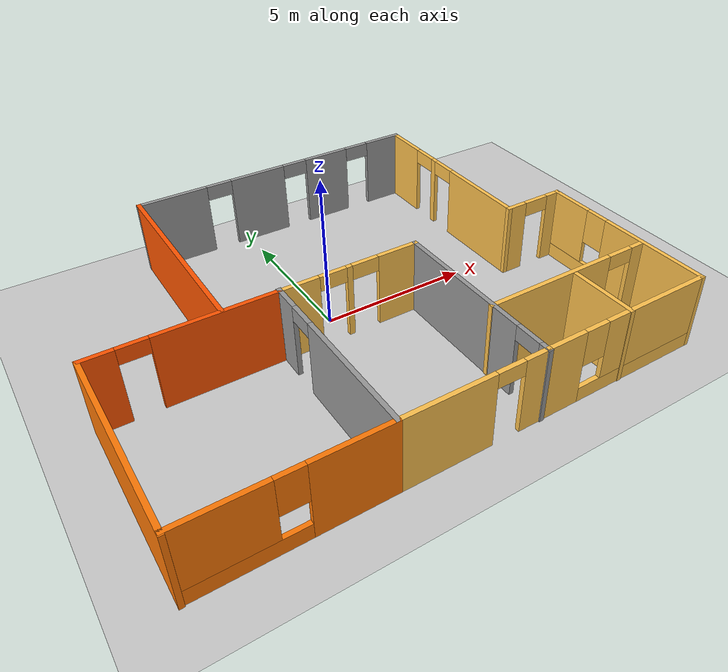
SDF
<sdf version="1.6">
 <world name="default">
  <light name="sun" type="directional">
   <pose>0 0 10 0 -0 0</pose>
   <diffuse>0.8 0.8 0.8 1</diffuse>
   <specular>0.2 0.2 0.2 1</specular>
   <attenuation>
    <range>1000</range>
    <constant>0.9</constant>
    <linear>0.01</linear>
    <quadratic>0.001</quadratic>
   </attenuation>
   <direction>-0.5 0.1 -0.9</direction>
  </light>
  <gravity>0 0 -9.8</gravity>
  <magnetic_field>6e-06 2.3e-05 -4.2e-05</magnetic_field>
  <atmosphere type="adiabatic"/>
  <physics name="default_physics" default="0" type="ode">
   <max_step_size>0.001</max_step_size>
   <real_time_factor>1</real_time_factor>
   <real_time_update_rate>1000</real_time_update_rate>
  </physics>
  <scene><ambient>0.4 0.4 0.4 1</ambient><background>0.7 0.7 0.7 1</background><shadows>1</shadows></scene>
  <spherical_coordinates>
   <surface_model>EARTH_WGS84</surface_model>
   <latitude_deg>0</latitude_deg>
   <longitude_deg>0</longitude_deg>
   <elevation>0</elevation>
   <heading_deg>0</heading_deg>
  </spherical_coordinates>
  <include><uri>model://home</uri><pose>0.490005 -0.469645 0 0 -0 0</pose></include>
  <include><uri>model://ground_plane</uri></include>
  <include><uri>model://my_ball</uri><name>my_ball</name><pose>11.051 -2.13249 0.1 0 -0 0</pose></include>
 </world>
</sdf>

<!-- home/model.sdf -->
<sdf version='1.6'>
  <model name='home'>
    <pose frame=''>-4.67293 -1.11377 0 0 -0 0</pose>
    <link name='Wall_29'>
      <collision name='Wall_29_Collision'>
        <geometry>
          <box>
            <size>6.25 0.15 2.5</size>
          </box>
        </geometry>
        <pose frame=''>0 0 1.25 0 -0 0</pose>
      </collision>
      <visual name='Wall_29_Visual'>
        <pose frame=''>0 0 1.25 0 -0 0</pose>
        <geometry>
          <box>
            <size>6.25 0.15 2.5</size>
          </box>
        </geometry>
        <material>
          <script>
            <uri>file://media/materials/scripts/gazebo.material</uri>
            <name>Gazebo/Grey</name>
          </script>
          <ambient>0.996078 0.47451 0.0196078 1</ambient>
        </material>
        <meta>
          <layer>0</layer>
        </meta>
      </visual>
      <pose frame=''>-8.03132 -3.44452 0 0 -0 1.5708</pose>
    </link>
    <link name='Wall_30'>
      <pose frame=''>-5.23132 -0.394516 0 0 -0 0</pose>
      <visual name='Wall_30_Visual_0'>
        <pose frame=''>-2.36576 0 1.25 0 -0 0</pose>
        <geometry>
          <box>
            <size>1.01847 0.15 2.5</size>
          </box>
        </geometry>
        <material>
          <script>
            <uri>file://media/materials/scripts/gazebo.material</uri>
            <name>Gazebo/Grey</name>
          </script>
          <ambient>1 0.333333 0 1</ambient>
        </material>
        <meta>
          <layer>0</layer>
        </meta>
      </visual>
      <collision name='Wall_30_Collision_0'>
        <geometry>
          <box>
            <size>1.01847 0.15 2.5</size>
          </box>
        </geometry>
        <pose frame=''>-2.36576 0 1.25 0 -0 0</pose>
      </collision>
      <visual name='Wall_30_Visual_1'>
        <pose frame=''>0.959236 0 1.25 0 -0 0</pose>
        <geometry>
          <box>
            <size>3.83153 0.15 2.5</size>
          </box>
        </geometry>
        <material>
          <script>
            <uri>file://media/materials/scripts/gazebo.material</uri>
            <name>Gazebo/Grey</name>
          </script>
          <ambient>1 0.333333 0 1</ambient>
        </material>
        <meta>
          <layer>0</layer>
        </meta>
      </visual>
      <collision name='Wall_30_Collision_1'>
        <geometry>
          <box>
            <size>3.83153 0.15 2.5</size>
          </box>
        </geometry>
        <pose frame=''>0.959236 0 1.25 0 -0 0</pose>
      </collision>
      <visual name='Wall_30_Visual_2'>
        <pose frame=''>-1.40653 0 2.25 0 -0 0</pose>
        <geometry>
          <box>
            <size>0.9 0.15 0.5</size>
          </box>
        </geometry>
        <material>
          <script>
            <uri>file://media/materials/scripts/gazebo.material</uri>
            <name>Gazebo/Grey</name>
          </script>
          <ambient>1 0.333333 0 1</ambient>
        </material>
        <meta>
          <layer>0</layer>
        </meta>
      </visual>
      <collision name='Wall_30_Collision_2'>
        <geometry>
          <box>
            <size>0.9 0.15 0.5</size>
          </box>
        </geometry>
        <pose frame=''>-1.40653 0 2.25 0 -0 0</pose>
      </collision>
    </link>
    <link name='Wall_33'>
      <pose frame=''>-2.41868 -3.40548 0 0 0 -1.5708</pose>
      <visual name='Wall_33_Visual_0'>
        <pose frame=''>-2.63049 0 1.25 0 -0 0</pose>
        <geometry>
          <box>
            <size>0.989023 0.15 2.5</size>
          </box>
        </geometry>
        <material>
          <script>
            <uri>file://media/materials/scripts/gazebo.material</uri>
            <name>Gazebo/Grey</name>
          </script>
          <ambient>1 1 1 1</ambient>
        </material>
        <meta>
          <layer>0</layer>
        </meta>
      </visual>
      <collision name='Wall_33_Collision_0'>
        <geometry>
          <box>
            <size>0.989023 0.15 2.5</size>
          </box>
        </geometry>
        <pose frame=''>-2.63049 0 1.25 0 -0 0</pose>
      </collision>
      <visual name='Wall_33_Visual_1'>
        <pose frame=''>0.944511 0 1.25 0 -0 0</pose>
        <geometry>
          <box>
            <size>4.36098 0.15 2.5</size>
          </box>
        </geometry>
        <material>
          <script>
            <uri>file://media/materials/scripts/gazebo.material</uri>
            <name>Gazebo/Grey</name>
          </script>
          <ambient>1 1 1 1</ambient>
        </material>
        <meta>
          <layer>0</layer>
        </meta>
      </visual>
      <collision name='Wall_33_Collision_1'>
        <geometry>
          <box>
            <size>4.36098 0.15 2.5</size>
          </box>
        </geometry>
        <pose frame=''>0.944511 0 1.25 0 -0 0</pose>
      </collision>
      <visual name='Wall_33_Visual_2'>
        <pose frame=''>-1.68598 0 2.25 0 -0 0</pose>
        <geometry>
          <box>
            <size>0.9 0.15 0.5</size>
          </box>
        </geometry>
        <material>
          <script>
            <uri>file://media/materials/scripts/gazebo.material</uri>
            <name>Gazebo/Grey</name>
          </script>
          <ambient>1 1 1 1</ambient>
        </material>
        <meta>
          <layer>0</layer>
        </meta>
      </visual>
      <collision name='Wall_33_Collision_2'>
        <geometry>
          <box>
            <size>0.9 0.15 0.5</size>
          </box>
        </geometry>
        <pose frame=''>-1.68598 0 2.25 0 -0 0</pose>
      </collision>
    </link>
    <link name='Wall_34'>
      <pose frame=''>-5.21868 -6.45548 0 0 -0 3.14159</pose>
      <visual name='Wall_34_Visual_0'>
        <pose frame=''>-1.65698 0 1.25 0 -0 0</pose>
        <geometry>
          <box>
            <size>2.43604 0.15 2.5</size>
          </box>
        </geometry>
        <material>
          <script>
            <uri>file://media/materials/scripts/gazebo.material</uri>
            <name>Gazebo/Grey</name>
          </script>
          <ambient>0.996078 0.47451 0.0196078 1</ambient>
        </material>
        <meta>
          <layer>0</layer>
        </meta>
      </visual>
      <collision name='Wall_34_Collision_0'>
        <geometry>
          <box>
            <size>2.43604 0.15 2.5</size>
          </box>
        </geometry>
        <pose frame=''>-1.65698 0 1.25 0 -0 0</pose>
      </collision>
      <visual name='Wall_34_Visual_1'>
        <pose frame=''>1.21802 0 0.25 0 -0 0</pose>
        <geometry>
          <box>
            <size>3.31396 0.15 0.5</size>
          </box>
        </geometry>
        <material>
          <script>
            <uri>file://media/materials/scripts/gazebo.material</uri>
            <name>Gazebo/Grey</name>
          </script>
          <ambient>0.996078 0.47451 0.0196078 1</ambient>
        </material>
        <meta>
          <layer>0</layer>
        </meta>
      </visual>
      <collision name='Wall_34_Collision_1'>
        <geometry>
          <box>
            <size>3.31396 0.15 0.5</size>
          </box>
        </geometry>
        <pose frame=''>1.21802 0 0.25 0 -0 0</pose>
      </collision>
      <visual name='Wall_34_Visual_2'>
        <pose frame=''>1.61802 0 1.5 0 -0 0</pose>
        <geometry>
          <box>
            <size>2.51396 0.15 2</size>
          </box>
        </geometry>
        <material>
          <script>
            <uri>file://media/materials/scripts/gazebo.material</uri>
            <name>Gazebo/Grey</name>
          </script>
          <ambient>0.996078 0.47451 0.0196078 1</ambient>
        </material>
        <meta>
          <layer>0</layer>
        </meta>
      </visual>
      <collision name='Wall_34_Collision_2'>
        <geometry>
          <box>
            <size>2.51396 0.15 2</size>
          </box>
        </geometry>
        <pose frame=''>1.61802 0 1.5 0 -0 0</pose>
      </collision>
      <visual name='Wall_34_Visual_3'>
        <pose frame=''>-0.038964 0 1.9 0 -0 0</pose>
        <geometry>
          <box>
            <size>0.8 0.15 1.2</size>
          </box>
        </geometry>
        <material>
          <script>
            <uri>file://media/materials/scripts/gazebo.material</uri>
            <name>Gazebo/Grey</name>
          </script>
          <ambient>0.996078 0.47451 0.0196078 1</ambient>
        </material>
        <meta>
          <layer>0</layer>
        </meta>
      </visual>
      <collision name='Wall_34_Collision_3'>
        <geometry>
          <box>
            <size>0.8 0.15 1.2</size>
          </box>
        </geometry>
        <pose frame=''>-0.038964 0 1.9 0 -0 0</pose>
      </collision>
    </link>
    <link name='Wall_38'>
      <pose frame=''>-0.118679 -6.45548 0 0 -0 0</pose>
      <visual name='Wall_38_Visual_0'>
        <pose frame=''>-0.881556 0 1.25 0 -0 0</pose>
        <geometry>
          <box>
            <size>2.98689 0.15 2.5</size>
          </box>
        </geometry>
        <material>
          <script>
            <uri>file://media/materials/scripts/gazebo.material</uri>
            <name>Gazebo/Grey</name>
          </script>
          <ambient>1 0.764706 0.305882 1</ambient>
        </material>
        <meta>
          <layer>0</layer>
        </meta>
      </visual>
      <collision name='Wall_38_Collision_0'>
        <geometry>
          <box>
            <size>2.98689 0.15 2.5</size>
          </box>
        </geometry>
        <pose frame=''>-0.881556 0 1.25 0 -0 0</pose>
      </collision>
      <visual name='Wall_38_Visual_1'>
        <pose frame=''>1.94344 0 1.25 0 -0 0</pose>
        <geometry>
          <box>
            <size>0.863112 0.15 2.5</size>
          </box>
        </geometry>
        <material>
          <script>
            <uri>file://media/materials/scripts/gazebo.material</uri>
            <name>Gazebo/Grey</name>
          </script>
          <ambient>1 0.764706 0.305882 1</ambient>
        </material>
        <meta>
          <layer>0</layer>
        </meta>
      </visual>
      <collision name='Wall_38_Collision_1'>
        <geometry>
          <box>
            <size>0.863112 0.15 2.5</size>
          </box>
        </geometry>
        <pose frame=''>1.94344 0 1.25 0 -0 0</pose>
      </collision>
      <visual name='Wall_38_Visual_2'>
        <pose frame=''>1.06189 0 2.25 0 -0 0</pose>
        <geometry>
          <box>
            <size>0.9 0.15 0.5</size>
          </box>
        </geometry>
        <material>
          <script>
            <uri>file://media/materials/scripts/gazebo.material</uri>
            <name>Gazebo/Grey</name>
          </script>
          <ambient>1 0.764706 0.305882 1</ambient>
        </material>
        <meta>
          <layer>0</layer>
        </meta>
      </visual>
      <collision name='Wall_38_Collision_2'>
        <geometry>
          <box>
            <size>0.9 0.15 0.5</size>
          </box>
        </geometry>
        <pose frame=''>1.06189 0 2.25 0 -0 0</pose>
      </collision>
    </link>
    <link name='Wall_39'>
      <pose frame=''>5.10632 -6.45548 0 0 -0 0</pose>
      <visual name='Wall_39_Visual_0'>
        <pose frame=''>-2.31199 0 1.25 0 -0 0</pose>
        <geometry>
          <box>
            <size>1.37601 0.15 2.5</size>
          </box>
        </geometry>
        <material>
          <script>
            <uri>file://media/materials/scripts/gazebo.material</uri>
            <name>Gazebo/Grey</name>
          </script>
          <ambient>1 0.764706 0.305882 1</ambient>
        </material>
        <meta>
          <layer>0</layer>
        </meta>
      </visual>
      <collision name='Wall_39_Collision_0'>
        <geometry>
          <box>
            <size>1.37601 0.15 2.5</size>
          </box>
        </geometry>
        <pose frame=''>-2.31199 0 1.25 0 -0 0</pose>
      </collision>
      <visual name='Wall_39_Visual_1'>
        <pose frame=''>0.688007 0 0.25 0 -0 0</pose>
        <geometry>
          <box>
            <size>4.62399 0.15 0.5</size>
          </box>
        </geometry>
        <material>
          <script>
            <uri>file://media/materials/scripts/gazebo.material</uri>
            <name>Gazebo/Grey</name>
          </script>
          <ambient>1 0.764706 0.305882 1</ambient>
        </material>
        <meta>
          <layer>0</layer>
        </meta>
      </visual>
      <collision name='Wall_39_Collision_1'>
        <geometry>
          <box>
            <size>4.62399 0.15 0.5</size>
          </box>
        </geometry>
        <pose frame=''>0.688007 0 0.25 0 -0 0</pose>
      </collision>
      <visual name='Wall_39_Visual_2'>
        <pose frame=''>1.08801 0 1.5 0 -0 0</pose>
        <geometry>
          <box>
            <size>3.82399 0.15 2</size>
          </box>
        </geometry>
        <material>
          <script>
            <uri>file://media/materials/scripts/gazebo.material</uri>
            <name>Gazebo/Grey</name>
          </script>
          <ambient>1 0.764706 0.305882 1</ambient>
        </material>
        <meta>
          <layer>0</layer>
        </meta>
      </visual>
      <collision name='Wall_39_Collision_2'>
        <geometry>
          <box>
            <size>3.82399 0.15 2</size>
          </box>
        </geometry>
        <pose frame=''>1.08801 0 1.5 0 -0 0</pose>
      </collision>
      <visual name='Wall_39_Visual_3'>
        <pose frame=''>-1.22399 0 1.9 0 -0 0</pose>
        <geometry>
          <box>
            <size>0.8 0.15 1.2</size>
          </box>
        </geometry>
        <material>
          <script>
            <uri>file://media/materials/scripts/gazebo.material</uri>
            <name>Gazebo/Grey</name>
          </script>
          <ambient>1 0.764706 0.305882 1</ambient>
        </material>
        <meta>
          <layer>0</layer>
        </meta>
      </visual>
      <collision name='Wall_39_Collision_3'>
        <geometry>
          <box>
            <size>0.8 0.15 1.2</size>
          </box>
        </geometry>
        <pose frame=''>-1.22399 0 1.9 0 -0 0</pose>
      </collision>
    </link>
    <link name='Wall_40'>
      <pose frame=''>8.03132 -3.40548 0 0 -0 1.5708</pose>
      <visual name='Wall_40_Visual_0'>
        <pose frame=''>-1.2027 0 1.25 0 -0 0</pose>
        <geometry>
          <box>
            <size>3.8446 0.15 2.5</size>
          </box>
        </geometry>
        <material>
          <script>
            <uri>file://media/materials/scripts/gazebo.material</uri>
            <name>Gazebo/Grey</name>
          </script>
          <ambient>1 0.764706 0.305882 1</ambient>
        </material>
        <meta>
          <layer>0</layer>
        </meta>
      </visual>
      <collision name='Wall_40_Collision_0'>
        <geometry>
          <box>
            <size>3.8446 0.15 2.5</size>
          </box>
        </geometry>
        <pose frame=''>-1.2027 0 1.25 0 -0 0</pose>
      </collision>
      <visual name='Wall_40_Visual_1'>
        <pose frame=''>1.9223 0 0.25 0 -0 0</pose>
        <geometry>
          <box>
            <size>2.4054 0.15 0.5</size>
          </box>
        </geometry>
        <material>
          <script>
            <uri>file://media/materials/scripts/gazebo.material</uri>
            <name>Gazebo/Grey</name>
          </script>
          <ambient>1 0.764706 0.305882 1</ambient>
        </material>
        <meta>
          <layer>0</layer>
        </meta>
      </visual>
      <collision name='Wall_40_Collision_1'>
        <geometry>
          <box>
            <size>2.4054 0.15 0.5</size>
          </box>
        </geometry>
        <pose frame=''>1.9223 0 0.25 0 -0 0</pose>
      </collision>
      <visual name='Wall_40_Visual_2'>
        <pose frame=''>2.3223 0 1.5 0 -0 0</pose>
        <geometry>
          <box>
            <size>1.6054 0.15 2</size>
          </box>
        </geometry>
        <material>
          <script>
            <uri>file://media/materials/scripts/gazebo.material</uri>
            <name>Gazebo/Grey</name>
          </script>
          <ambient>1 0.764706 0.305882 1</ambient>
        </material>
        <meta>
          <layer>0</layer>
        </meta>
      </visual>
      <collision name='Wall_40_Collision_2'>
        <geometry>
          <box>
            <size>1.6054 0.15 2</size>
          </box>
        </geometry>
        <pose frame=''>2.3223 0 1.5 0 -0 0</pose>
      </collision>
      <visual name='Wall_40_Visual_3'>
        <pose frame=''>1.1196 0 1.9 0 -0 0</pose>
        <geometry>
          <box>
            <size>0.8 0.15 1.2</size>
          </box>
        </geometry>
        <material>
          <script>
            <uri>file://media/materials/scripts/gazebo.material</uri>
            <name>Gazebo/Grey</name>
          </script>
          <ambient>1 0.764706 0.305882 1</ambient>
        </material>
        <meta>
          <layer>0</layer>
        </meta>
      </visual>
      <collision name='Wall_40_Collision_3'>
        <geometry>
          <box>
            <size>0.8 0.15 1.2</size>
          </box>
        </geometry>
        <pose frame=''>1.1196 0 1.9 0 -0 0</pose>
      </collision>
    </link>
    <link name='Wall_41'>
      <pose frame=''>6.98132 -0.355484 0 0 -0 3.14159</pose>
      <visual name='Wall_41_Visual_0'>
        <pose frame=''>-0.827467 0 1.25 0 -0 0</pose>
        <geometry>
          <box>
            <size>0.595067 0.15 2.5</size>
          </box>
        </geometry>
        <material>
          <script>
            <uri>file://media/materials/scripts/gazebo.material</uri>
            <name>Gazebo/Grey</name>
          </script>
          <ambient>1 0.764706 0.305882 1</ambient>
        </material>
        <meta>
          <layer>0</layer>
        </meta>
      </visual>
      <collision name='Wall_41_Collision_0'>
        <geometry>
          <box>
            <size>0.595067 0.15 2.5</size>
          </box>
        </geometry>
        <pose frame=''>-0.827467 0 1.25 0 -0 0</pose>
      </collision>
      <visual name='Wall_41_Visual_1'>
        <pose frame=''>0.747533 0 1.25 0 -0 0</pose>
        <geometry>
          <box>
            <size>0.754933 0.15 2.5</size>
          </box>
        </geometry>
        <material>
          <script>
            <uri>file://media/materials/scripts/gazebo.material</uri>
            <name>Gazebo/Grey</name>
          </script>
          <ambient>1 0.764706 0.305882 1</ambient>
        </material>
        <meta>
          <layer>0</layer>
        </meta>
      </visual>
      <collision name='Wall_41_Collision_1'>
        <geometry>
          <box>
            <size>0.754933 0.15 2.5</size>
          </box>
        </geometry>
        <pose frame=''>0.747533 0 1.25 0 -0 0</pose>
      </collision>
      <visual name='Wall_41_Visual_2'>
        <pose frame=''>-0.079933 0 2.25 0 -0 0</pose>
        <geometry>
          <box>
            <size>0.9 0.15 0.5</size>
          </box>
        </geometry>
        <material>
          <script>
            <uri>file://media/materials/scripts/gazebo.material</uri>
            <name>Gazebo/Grey</name>
          </script>
          <ambient>1 0.764706 0.305882 1</ambient>
        </material>
        <meta>
          <layer>0</layer>
        </meta>
      </visual>
      <collision name='Wall_41_Collision_2'>
        <geometry>
          <box>
            <size>0.9 0.15 0.5</size>
          </box>
        </geometry>
        <pose frame=''>-0.079933 0 2.25 0 -0 0</pose>
      </collision>
    </link>
    <link name='Wall_42'>
      <pose frame=''>5.93132 3.06952 0 0 -0 1.5708</pose>
      <visual name='Wall_42_Visual_0'>
        <pose frame=''>-1.86127 0 1.25 0 -0 0</pose>
        <geometry>
          <box>
            <size>3.27747 0.15 2.5</size>
          </box>
        </geometry>
        <material>
          <script>
            <uri>file://media/materials/scripts/gazebo.material</uri>
            <name>Gazebo/Grey</name>
          </script>
          <ambient>1 0.764706 0.305882 1</ambient>
        </material>
        <meta>
          <layer>0</layer>
        </meta>
      </visual>
      <collision name='Wall_42_Collision_0'>
        <geometry>
          <box>
            <size>3.27747 0.15 2.5</size>
          </box>
        </geometry>
        <pose frame=''>-1.86127 0 1.25 0 -0 0</pose>
      </collision>
      <visual name='Wall_42_Visual_1'>
        <pose frame=''>0.793847 0 1.25 0 -0 0</pose>
        <geometry>
          <box>
            <size>0.232756 0.15 2.5</size>
          </box>
        </geometry>
        <material>
          <script>
            <uri>file://media/materials/scripts/gazebo.material</uri>
            <name>Gazebo/Grey</name>
          </script>
          <ambient>1 0.764706 0.305882 1</ambient>
        </material>
        <meta>
          <layer>0</layer>
        </meta>
      </visual>
      <collision name='Wall_42_Collision_1'>
        <geometry>
          <box>
            <size>0.232756 0.15 2.5</size>
          </box>
        </geometry>
        <pose frame=''>0.793847 0 1.25 0 -0 0</pose>
      </collision>
      <visual name='Wall_42_Visual_2'>
        <pose frame=''>2.65511 0 1.25 0 -0 0</pose>
        <geometry>
          <box>
            <size>1.68978 0.15 2.5</size>
          </box>
        </geometry>
        <material>
          <script>
            <uri>file://media/materials/scripts/gazebo.material</uri>
            <name>Gazebo/Grey</name>
          </script>
          <ambient>1 0.764706 0.305882 1</ambient>
        </material>
        <meta>
          <layer>0</layer>
        </meta>
      </visual>
      <collision name='Wall_42_Collision_2'>
        <geometry>
          <box>
            <size>1.68978 0.15 2.5</size>
          </box>
        </geometry>
        <pose frame=''>2.65511 0 1.25 0 -0 0</pose>
      </collision>
      <visual name='Wall_42_Visual_3'>
        <pose frame=''>0.227469 0 2.25 0 -0 0</pose>
        <geometry>
          <box>
            <size>0.9 0.15 0.5</size>
          </box>
        </geometry>
        <material>
          <script>
            <uri>file://media/materials/scripts/gazebo.material</uri>
            <name>Gazebo/Grey</name>
          </script>
          <ambient>1 0.764706 0.305882 1</ambient>
        </material>
        <meta>
          <layer>0</layer>
        </meta>
      </visual>
      <collision name='Wall_42_Collision_3'>
        <geometry>
          <box>
            <size>0.9 0.15 0.5</size>
          </box>
        </geometry>
        <pose frame=''>0.227469 0 2.25 0 -0 0</pose>
      </collision>
      <visual name='Wall_42_Visual_4'>
        <pose frame=''>1.36023 0 2.25 0 -0 0</pose>
        <geometry>
          <box>
            <size>0.9 0.15 0.5</size>
          </box>
        </geometry>
        <material>
          <script>
            <uri>file://media/materials/scripts/gazebo.material</uri>
            <name>Gazebo/Grey</name>
          </script>
          <ambient>1 0.764706 0.305882 1</ambient>
        </material>
        <meta>
          <layer>0</layer>
        </meta>
      </visual>
      <collision name='Wall_42_Collision_4'>
        <geometry>
          <box>
            <size>0.9 0.15 0.5</size>
          </box>
        </geometry>
        <pose frame=''>1.36023 0 2.25 0 -0 0</pose>
      </collision>
    </link>
    <link name='Wall_43'>
      <pose frame=''>0.881321 6.49452 0 0 -0 3.14159</pose>
      <visual name='Wall_43_Visual_0'>
        <pose frame=''>-4.40937 0 1.25 0 -0 0</pose>
        <geometry>
          <box>
            <size>1.43125 0.15 2.5</size>
          </box>
        </geometry>
        <material>
          <script>
            <uri>file://media/materials/scripts/gazebo.material</uri>
            <name>Gazebo/Grey</name>
          </script>
          <ambient>1 1 1 1</ambient>
        </material>
        <meta>
          <layer>0</layer>
        </meta>
      </visual>
      <collision name='Wall_43_Collision_0'>
        <geometry>
          <box>
            <size>1.43125 0.15 2.5</size>
          </box>
        </geometry>
        <pose frame=''>-4.40937 0 1.25 0 -0 0</pose>
      </collision>
      <visual name='Wall_43_Visual_1'>
        <pose frame=''>-1.94917 0 1.25 0 -0 0</pose>
        <geometry>
          <box>
            <size>1.68916 0.15 2.5</size>
          </box>
        </geometry>
        <material>
          <script>
            <uri>file://media/materials/scripts/gazebo.material</uri>
            <name>Gazebo/Grey</name>
          </script>
          <ambient>1 1 1 1</ambient>
        </material>
        <meta>
          <layer>0</layer>
        </meta>
      </visual>
      <collision name='Wall_43_Collision_1'>
        <geometry>
          <box>
            <size>1.68916 0.15 2.5</size>
          </box>
        </geometry>
        <pose frame=''>-1.94917 0 1.25 0 -0 0</pose>
      </collision>
      <visual name='Wall_43_Visual_2'>
        <pose frame=''>0.801811 0 1.25 0 -0 0</pose>
        <geometry>
          <box>
            <size>2.0128 0.15 2.5</size>
          </box>
        </geometry>
        <material>
          <script>
            <uri>file://media/materials/scripts/gazebo.material</uri>
            <name>Gazebo/Grey</name>
          </script>
          <ambient>1 1 1 1</ambient>
        </material>
        <meta>
          <layer>0</layer>
        </meta>
      </visual>
      <collision name='Wall_43_Collision_2'>
        <geometry>
          <box>
            <size>2.0128 0.15 2.5</size>
          </box>
        </geometry>
        <pose frame=''>0.801811 0 1.25 0 -0 0</pose>
      </collision>
      <visual name='Wall_43_Visual_3'>
        <pose frame=''>3.91661 0 1.25 0 -0 0</pose>
        <geometry>
          <box>
            <size>2.41679 0.15 2.5</size>
          </box>
        </geometry>
        <material>
          <script>
            <uri>file://media/materials/scripts/gazebo.material</uri>
            <name>Gazebo/Grey</name>
          </script>
          <ambient>1 1 1 1</ambient>
        </material>
        <meta>
          <layer>0</layer>
        </meta>
      </visual>
      <collision name='Wall_43_Collision_3'>
        <geometry>
          <box>
            <size>2.41679 0.15 2.5</size>
          </box>
        </geometry>
        <pose frame=''>3.91661 0 1.25 0 -0 0</pose>
      </collision>
      <visual name='Wall_43_Visual_4'>
        <pose frame=''>-3.24375 0 2.25 0 -0 0</pose>
        <geometry>
          <box>
            <size>0.9 0.15 0.5</size>
          </box>
        </geometry>
        <material>
          <script>
            <uri>file://media/materials/scripts/gazebo.material</uri>
            <name>Gazebo/Grey</name>
          </script>
          <ambient>1 1 1 1</ambient>
        </material>
        <meta>
          <layer>0</layer>
        </meta>
      </visual>
      <collision name='Wall_43_Collision_4'>
        <geometry>
          <box>
            <size>0.9 0.15 0.5</size>
          </box>
        </geometry>
        <pose frame=''>-3.24375 0 2.25 0 -0 0</pose>
      </collision>
      <visual name='Wall_43_Visual_5'>
        <pose frame=''>-0.654589 0 2.25 0 -0 0</pose>
        <geometry>
          <box>
            <size>0.9 0.15 0.5</size>
          </box>
        </geometry>
        <material>
          <script>
            <uri>file://media/materials/scripts/gazebo.material</uri>
            <name>Gazebo/Grey</name>
          </script>
          <ambient>1 1 1 1</ambient>
        </material>
        <meta>
          <layer>0</layer>
        </meta>
      </visual>
      <collision name='Wall_43_Collision_5'>
        <geometry>
          <box>
            <size>0.9 0.15 0.5</size>
          </box>
        </geometry>
        <pose frame=''>-0.654589 0 2.25 0 -0 0</pose>
      </collision>
      <visual name='Wall_43_Visual_6'>
        <pose frame=''>2.25821 0 2.25 0 -0 0</pose>
        <geometry>
          <box>
            <size>0.9 0.15 0.5</size>
          </box>
        </geometry>
        <material>
          <script>
            <uri>file://media/materials/scripts/gazebo.material</uri>
            <name>Gazebo/Grey</name>
          </script>
          <ambient>1 1 1 1</ambient>
        </material>
        <meta>
          <layer>0</layer>
        </meta>
      </visual>
      <collision name='Wall_43_Collision_6'>
        <geometry>
          <box>
            <size>0.9 0.15 0.5</size>
          </box>
        </geometry>
        <pose frame=''>2.25821 0 2.25 0 -0 0</pose>
      </collision>
    </link>
    <link name='Wall_44'>
      <collision name='Wall_44_Collision'>
        <geometry>
          <box>
            <size>7 0.15 2.5</size>
          </box>
        </geometry>
        <pose frame=''>0 0 1.25 0 -0 0</pose>
      </collision>
      <visual name='Wall_44_Visual'>
        <pose frame=''>0 0 1.25 0 -0 0</pose>
        <geometry>
          <box>
            <size>7 0.15 2.5</size>
          </box>
        </geometry>
        <material>
          <script>
            <uri>file://media/materials/scripts/gazebo.material</uri>
            <name>Gazebo/Grey</name>
          </script>
          <ambient>1 0.333333 0 1</ambient>
        </material>
        <meta>
          <layer>0</layer>
        </meta>
      </visual>
      <pose frame=''>-4.16868 3.06952 0 0 0 -1.5708</pose>
    </link>
    <link name='Wall_46'>
      <pose frame=''>-0.131321 -0.394516 0 0 -0 0</pose>
      <visual name='Wall_46_Visual_0'>
        <pose frame=''>-1.71314 0 1.25 0 -0 0</pose>
        <geometry>
          <box>
            <size>1.32372 0.15 2.5</size>
          </box>
        </geometry>
        <material>
          <script>
            <uri>file://media/materials/scripts/gazebo.material</uri>
            <name>Gazebo/Grey</name>
          </script>
          <ambient>1 0.764706 0.305882 1</ambient>
        </material>
        <meta>
          <layer>0</layer>
        </meta>
      </visual>
      <collision name='Wall_46_Collision_0'>
        <geometry>
          <box>
            <size>1.32372 0.15 2.5</size>
          </box>
        </geometry>
        <pose frame=''>-1.71314 0 1.25 0 -0 0</pose>
      </collision>
      <visual name='Wall_46_Visual_1'>
        <pose frame=''>-0.055979 0 1.25 0 -0 0</pose>
        <geometry>
          <box>
            <size>0.190608 0.15 2.5</size>
          </box>
        </geometry>
        <material>
          <script>
            <uri>file://media/materials/scripts/gazebo.material</uri>
            <name>Gazebo/Grey</name>
          </script>
          <ambient>1 0.764706 0.305882 1</ambient>
        </material>
        <meta>
          <layer>0</layer>
        </meta>
      </visual>
      <collision name='Wall_46_Collision_1'>
        <geometry>
          <box>
            <size>0.190608 0.15 2.5</size>
          </box>
        </geometry>
        <pose frame=''>-0.055979 0 1.25 0 -0 0</pose>
      </collision>
      <visual name='Wall_46_Visual_2'>
        <pose frame=''>1.65716 0 1.25 0 -0 0</pose>
        <geometry>
          <box>
            <size>1.43568 0.15 2.5</size>
          </box>
        </geometry>
        <material>
          <script>
            <uri>file://media/materials/scripts/gazebo.material</uri>
            <name>Gazebo/Grey</name>
          </script>
          <ambient>1 0.764706 0.305882 1</ambient>
        </material>
        <meta>
          <layer>0</layer>
        </meta>
      </visual>
      <collision name='Wall_46_Collision_2'>
        <geometry>
          <box>
            <size>1.43568 0.15 2.5</size>
          </box>
        </geometry>
        <pose frame=''>1.65716 0 1.25 0 -0 0</pose>
      </collision>
      <visual name='Wall_46_Visual_3'>
        <pose frame=''>-0.601283 0 2.25 0 -0 0</pose>
        <geometry>
          <box>
            <size>0.9 0.15 0.5</size>
          </box>
        </geometry>
        <material>
          <script>
            <uri>file://media/materials/scripts/gazebo.material</uri>
            <name>Gazebo/Grey</name>
          </script>
          <ambient>1 0.764706 0.305882 1</ambient>
        </material>
        <meta>
          <layer>0</layer>
        </meta>
      </visual>
      <collision name='Wall_46_Collision_3'>
        <geometry>
          <box>
            <size>0.9 0.15 0.5</size>
          </box>
        </geometry>
        <pose frame=''>-0.601283 0 2.25 0 -0 0</pose>
      </collision>
      <visual name='Wall_46_Visual_4'>
        <pose frame=''>0.489325 0 2.25 0 -0 0</pose>
        <geometry>
          <box>
            <size>0.9 0.15 0.5</size>
          </box>
        </geometry>
        <material>
          <script>
            <uri>file://media/materials/scripts/gazebo.material</uri>
            <name>Gazebo/Grey</name>
          </script>
          <ambient>1 0.764706 0.305882 1</ambient>
        </material>
        <meta>
          <layer>0</layer>
        </meta>
      </visual>
      <collision name='Wall_46_Collision_4'>
        <geometry>
          <box>
            <size>0.9 0.15 0.5</size>
          </box>
        </geometry>
        <pose frame=''>0.489325 0 2.25 0 -0 0</pose>
      </collision>
    </link>
    <link name='Wall_47'>
      <pose frame=''>2.16868 -3.44452 0 0 0 -1.5708</pose>
      <visual name='Wall_47_Visual_0'>
        <pose frame=''>-0.645037 0 1.25 0 -0 0</pose>
        <geometry>
          <box>
            <size>4.95993 0.15 2.5</size>
          </box>
        </geometry>
        <material>
          <script>
            <uri>file://media/materials/scripts/gazebo.material</uri>
            <name>Gazebo/Grey</name>
          </script>
          <ambient>1 1 1 1</ambient>
        </material>
        <meta>
          <layer>0</layer>
        </meta>
      </visual>
      <collision name='Wall_47_Collision_0'>
        <geometry>
          <box>
            <size>4.95993 0.15 2.5</size>
          </box>
        </geometry>
        <pose frame=''>-0.645037 0 1.25 0 -0 0</pose>
      </collision>
      <visual name='Wall_47_Visual_1'>
        <pose frame=''>2.92996 0 1.25 0 -0 0</pose>
        <geometry>
          <box>
            <size>0.390074 0.15 2.5</size>
          </box>
        </geometry>
        <material>
          <script>
            <uri>file://media/materials/scripts/gazebo.material</uri>
            <name>Gazebo/Grey</name>
          </script>
          <ambient>1 1 1 1</ambient>
        </material>
        <meta>
          <layer>0</layer>
        </meta>
      </visual>
      <collision name='Wall_47_Collision_1'>
        <geometry>
          <box>
            <size>0.390074 0.15 2.5</size>
          </box>
        </geometry>
        <pose frame=''>2.92996 0 1.25 0 -0 0</pose>
      </collision>
      <visual name='Wall_47_Visual_2'>
        <pose frame=''>2.28493 0 2.25 0 -0 0</pose>
        <geometry>
          <box>
            <size>0.9 0.15 0.5</size>
          </box>
        </geometry>
        <material>
          <script>
            <uri>file://media/materials/scripts/gazebo.material</uri>
            <name>Gazebo/Grey</name>
          </script>
          <ambient>1 1 1 1</ambient>
        </material>
        <meta>
          <layer>0</layer>
        </meta>
      </visual>
      <collision name='Wall_47_Collision_2'>
        <geometry>
          <box>
            <size>0.9 0.15 0.5</size>
          </box>
        </geometry>
        <pose frame=''>2.28493 0 2.25 0 -0 0</pose>
      </collision>
    </link>
    <link name='Wall_49'>
      <pose frame=''>5.06537 -4.21229 0 0 -0 0</pose>
      <visual name='Wall_49_Visual_0'>
        <pose frame=''>-0.740357 0 1.25 0 -0 0</pose>
        <geometry>
          <box>
            <size>4.51929 0.15 2.5</size>
          </box>
        </geometry>
        <material>
          <script>
            <uri>file://media/materials/scripts/gazebo.material</uri>
            <name>Gazebo/Grey</name>
          </script>
          <ambient>1 0.764706 0.305882 1</ambient>
        </material>
        <meta>
          <layer>0</layer>
        </meta>
      </visual>
      <collision name='Wall_49_Collision_0'>
        <geometry>
          <box>
            <size>4.51929 0.15 2.5</size>
          </box>
        </geometry>
        <pose frame=''>-0.740357 0 1.25 0 -0 0</pose>
      </collision>
      <visual name='Wall_49_Visual_1'>
        <pose frame=''>2.70964 0 1.25 0 -0 0</pose>
        <geometry>
          <box>
            <size>0.580713 0.15 2.5</size>
          </box>
        </geometry>
        <material>
          <script>
            <uri>file://media/materials/scripts/gazebo.material</uri>
            <name>Gazebo/Grey</name>
          </script>
          <ambient>1 0.764706 0.305882 1</ambient>
        </material>
        <meta>
          <layer>0</layer>
        </meta>
      </visual>
      <collision name='Wall_49_Collision_1'>
        <geometry>
          <box>
            <size>0.580713 0.15 2.5</size>
          </box>
        </geometry>
        <pose frame=''>2.70964 0 1.25 0 -0 0</pose>
      </collision>
      <visual name='Wall_49_Visual_2'>
        <pose frame=''>1.96929 0 2.25 0 -0 0</pose>
        <geometry>
          <box>
            <size>0.9 0.15 0.5</size>
          </box>
        </geometry>
        <material>
          <script>
            <uri>file://media/materials/scripts/gazebo.material</uri>
            <name>Gazebo/Grey</name>
          </script>
          <ambient>1 0.764706 0.305882 1</ambient>
        </material>
        <meta>
          <layer>0</layer>
        </meta>
      </visual>
      <collision name='Wall_49_Collision_2'>
        <geometry>
          <box>
            <size>0.9 0.15 0.5</size>
          </box>
        </geometry>
        <pose frame=''>1.96929 0 2.25 0 -0 0</pose>
      </collision>
    </link>
    <link name='Wall_51'>
      <collision name='Wall_51_Collision'>
        <geometry>
          <box>
            <size>2.25 0.15 2.5</size>
          </box>
        </geometry>
        <pose frame=''>0 0 1.25 0 -0 0</pose>
      </collision>
      <visual name='Wall_51_Visual'>
        <pose frame=''>0 0 1.25 0 -0 0</pose>
        <geometry>
          <box>
            <size>2.25 0.15 2.5</size>
          </box>
        </geometry>
        <material>
          <script>
            <uri>file://media/materials/scripts/gazebo.material</uri>
            <name>Gazebo/Grey</name>
          </script>
          <ambient>1 0.764706 0.305882 1</ambient>
        </material>
        <meta>
          <layer>0</layer>
        </meta>
      </visual>
      <pose frame=''>5.13408 -5.42411 0 0 0 -1.5708</pose>
    </link>
    <static>1</static>
  </model>
</sdf>

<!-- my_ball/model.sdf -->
<sdf version='1.6'>
  <model name='my_ball'>
    <link name='link_0'>
      <pose frame=''>0 0 0 0 -0 0</pose>
      <inertial>
        <mass>1</mass>
        <inertia>
          <ixx>0.1</ixx>
          <ixy>0</ixy>
          <ixz>0</ixz>
          <iyy>0.1</iyy>
          <iyz>0</iyz>
          <izz>0.1</izz>
        </inertia>
        <pose frame=''>0 0 0 0 -0 0</pose>
      </inertial>
      <gravity>1</gravity>
      <self_collide>0</self_collide>
      <kinematic>0</kinematic>
      <visual name='visual'>
        <pose frame=''>0 0 0 0 -0 0</pose>
        <geometry>
          <sphere>
            <radius>0.1</radius>
          </sphere>
        </geometry>
        <material>
          <lighting>1</lighting>
          <script>
            <uri>file://media/materials/scripts/gazebo.material</uri>
            <name>Gazebo/White</name>
          </script>
          <shader type='pixel'>
            <normal_map>__default__</normal_map>
          </shader>
          <ambient>1 1 1 1</ambient>
          <diffuse>1 1 1 1</diffuse>
          <specular>1 1 1 1</specular>
          <emissive>1 1 1 1</emissive>
        </material>
        <transparency>0</transparency>
        <cast_shadows>1</cast_shadows>
      </visual>
      <collision name='collision'>
        <laser_retro>0</laser_retro>
        <max_contacts>10</max_contacts>
        <pose frame=''>0 0 0 0 -0 0</pose>
        <geometry>
          <sphere>
            <radius>0.1</radius>
          </sphere>
        </geometry>
        <surface>
          <friction>
            <ode>
              <mu>1</mu>
              <mu2>1</mu2>
              <fdir1>0 0 0</fdir1>
              <slip1>0</slip1>
              <slip2>0</slip2>
            </ode>
            <torsional>
              <coefficient>1</coefficient>
              <patch_radius>0</patch_radius>
              <surface_radius>0</surface_radius>
              <use_patch_radius>1</use_patch_radius>
              <ode>
                <slip>0</slip>
              </ode>
            </torsional>
          </friction>
          <bounce>
            <restitution_coefficient>0</restitution_coefficient>
            <threshold>1e+06</threshold>
          </bounce>
          <contact>
            <collide_without_contact>0</collide_without_contact>
            <collide_without_contact_bitmask>1</collide_without_contact_bitmask>
            <collide_bitmask>1</collide_bitmask>
            <ode>
              <soft_cfm>0</soft_cfm>
              <soft_erp>0.2</soft_erp>
              <kp>1e+13</kp>
              <kd>1</kd>
              <max_vel>0.01</max_vel>
              <min_depth>0</min_depth>
            </ode>
            <bullet>
              <split_impulse>1</split_impulse>
              <split_impulse_penetration_threshold>-0.01</split_impulse_penetration_threshold>
              <soft_cfm>0</soft_cfm>
              <soft_erp>0.2</soft_erp>
              <kp>1e+13</kp>
              <kd>1</kd>
            </bullet>
          </contact>
        </surface>
      </collision>
    </link>
    <static>0</static>
    <allow_auto_disable>1</allow_auto_disable>
  </model>
</sdf>
